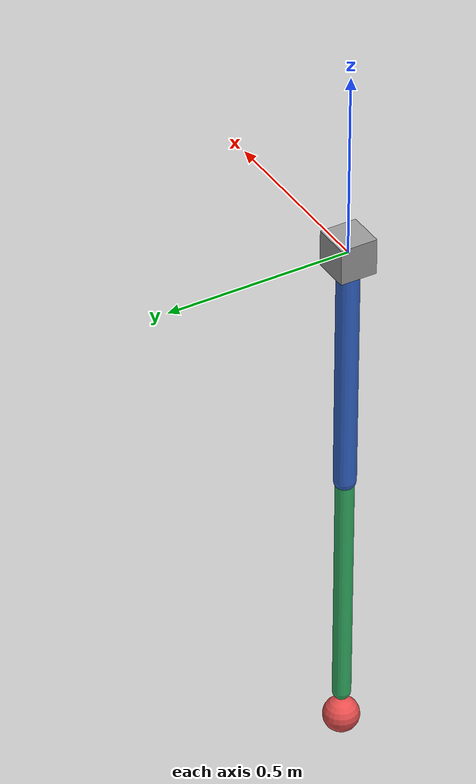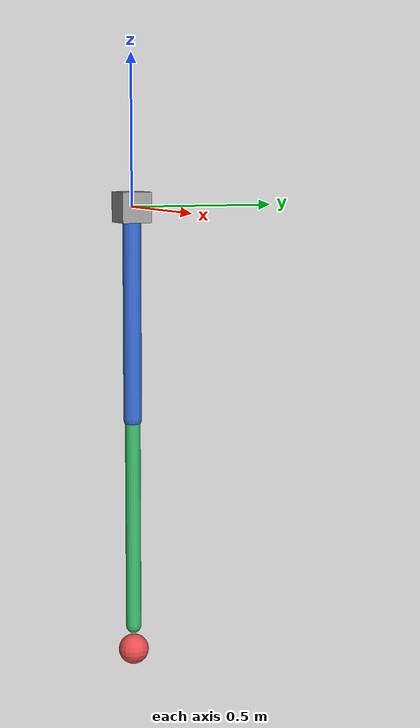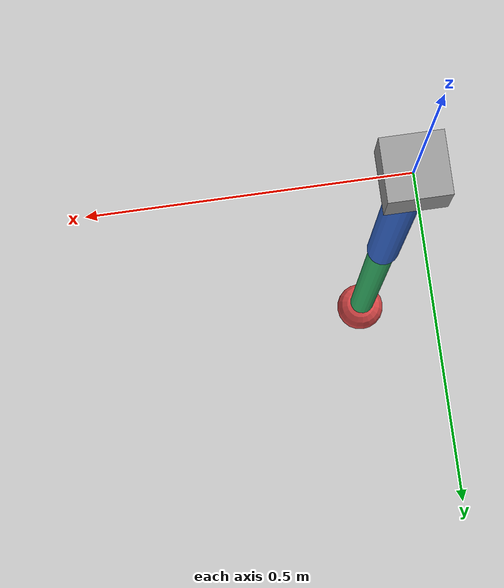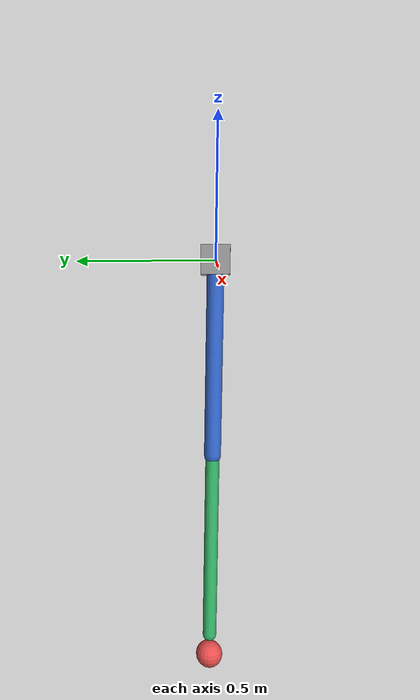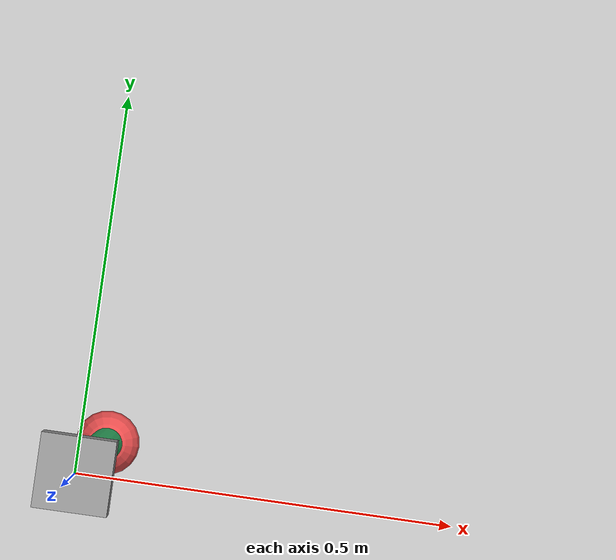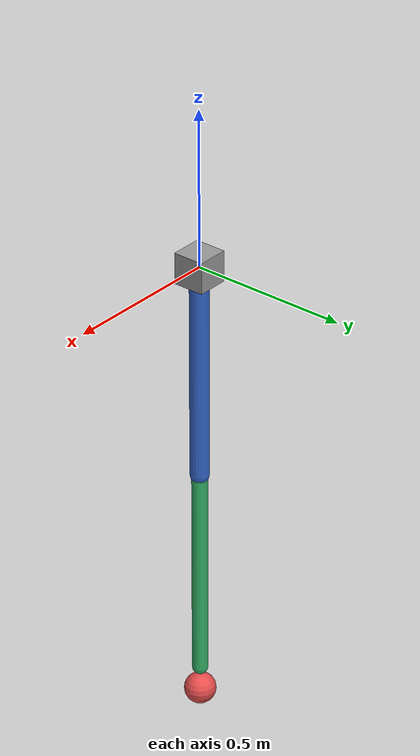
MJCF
<mujoco model="double_pendulum">
    <compiler angle="radian" autolimits="true"/>
    <option timestep="0.001" gravity="0 0 -9.81" integrator="implicitfast"/>

    <default>
        <joint damping="0.05"/>
        <general dyntype="none" gaintype="fixed" biastype="none" dynprm="1 0 0" gainprm="1 0 0" biasprm="0 0 0"/>
    </default>

    <worldbody>
        <body name="base_link" pos="0 0 0">
            <geom type="box" size="0.05 0.05 0.05" rgba="0.6 0.6 0.6 1"/>

            <body name="link_1" pos="0 0 0">
                <joint name="joint_1" type="hinge" axis="0 1 0" range="-12.5664 12.5664"/>
                <geom type="capsule" fromto="0 0 0 0 0 -0.7" size="0.03" rgba="0.2 0.4 0.8 1"/>

                <body name="joint_2_link" pos="0 0 -0.7">
                    <inertial pos="0 0 0" mass="0.02" diaginertia="1e-4 1e-4 1e-4"/>
                    <site name="joint_2_site" pos="0 0 0" size="0.02" rgba="0.9 0.6 0.1 1"/>

                    <body name="link_2" pos="0 0 0">
                        <joint name="joint_2" type="hinge" axis="0 1 0" range="-12.5664 12.5664"/>
                        <geom type="capsule" fromto="0 0 0 0 0 -0.7" size="0.025" rgba="0.2 0.7 0.4 1"/>

                        <body name="double_pendulum_ft_link" pos="0 0 -0.7">
                            <inertial pos="0 0 0" mass="0.001" diaginertia="1e-6 1e-6 1e-6"/>
                            <site name="double_pendulum_ft_site" pos="0 0 0" size="0.02" rgba="1 0 0 1"/>

                            <body name="double_pendulum_tip_link" pos="0 0 -0.08">
                                <inertial pos="0 0 0" mass="0.15" diaginertia="0.001 0.001 0.001"/>
                                <geom type="sphere" size="0.05" rgba="0.9 0.3 0.3 1"/>
                                <site name="double_pendulum_tip" pos="0 0 0" size="0.02" rgba="1 0.8 0 1"/>
                            </body>
                        </body>
                    </body>
                </body>
            </body>
        </body>
    </worldbody>

    <actuator>
        <general name="joint_1_actuator" joint="joint_1" ctrlrange="-40.0 40.0" ctrllimited="true"/>
        <general name="joint_2_actuator" joint="joint_2" ctrlrange="-40.0 40.0" ctrllimited="true"/>
    </actuator>

    <sensor>
        <force name="double_pendulum_tip_force" site="double_pendulum_ft_site"/>
        <torque name="double_pendulum_tip_torque" site="double_pendulum_ft_site"/>
    </sensor>

    <keyframe>
        <key name="home" qpos="0.12 -0.08" ctrl="0 0"/>
    </keyframe>
</mujoco>
